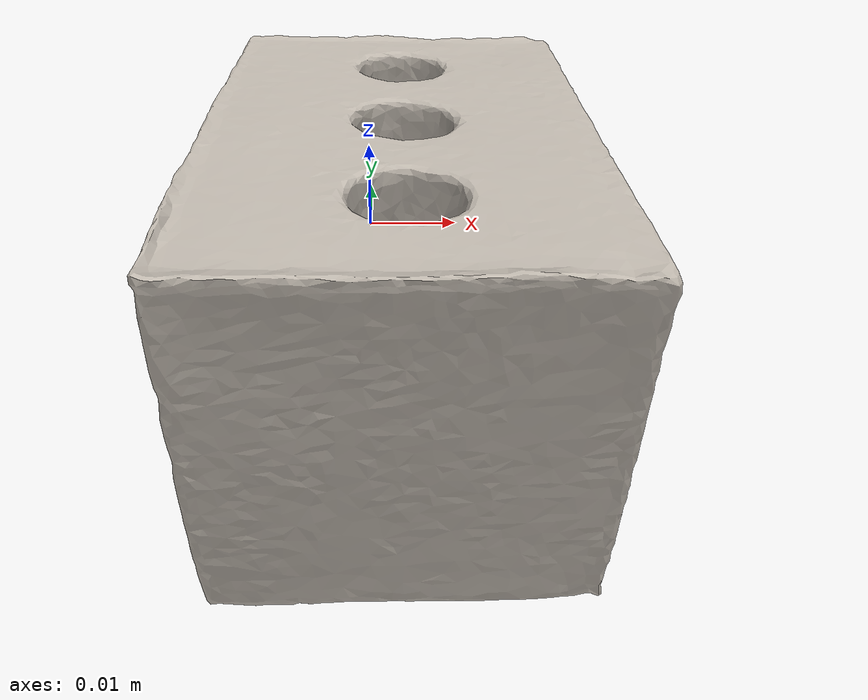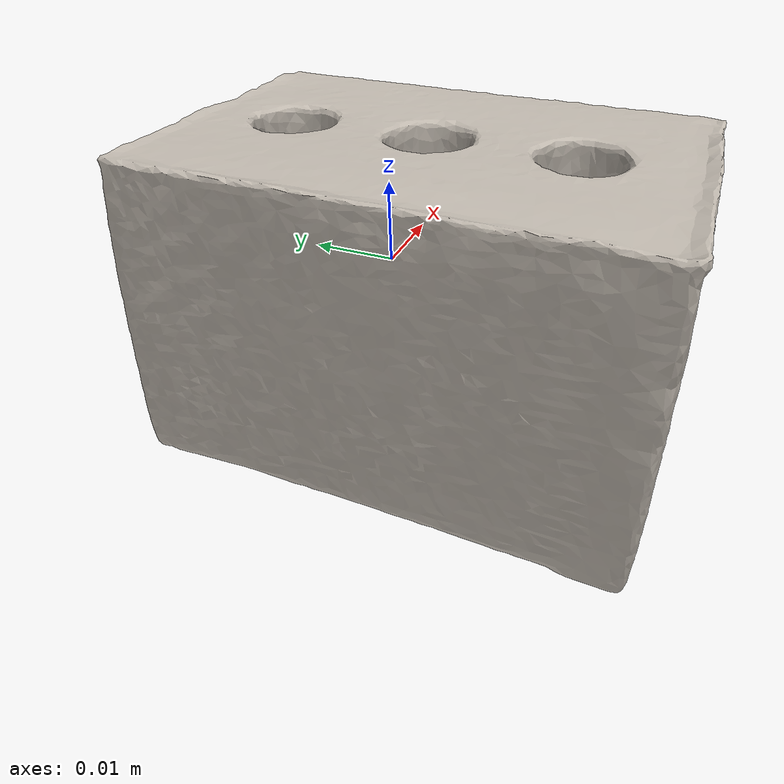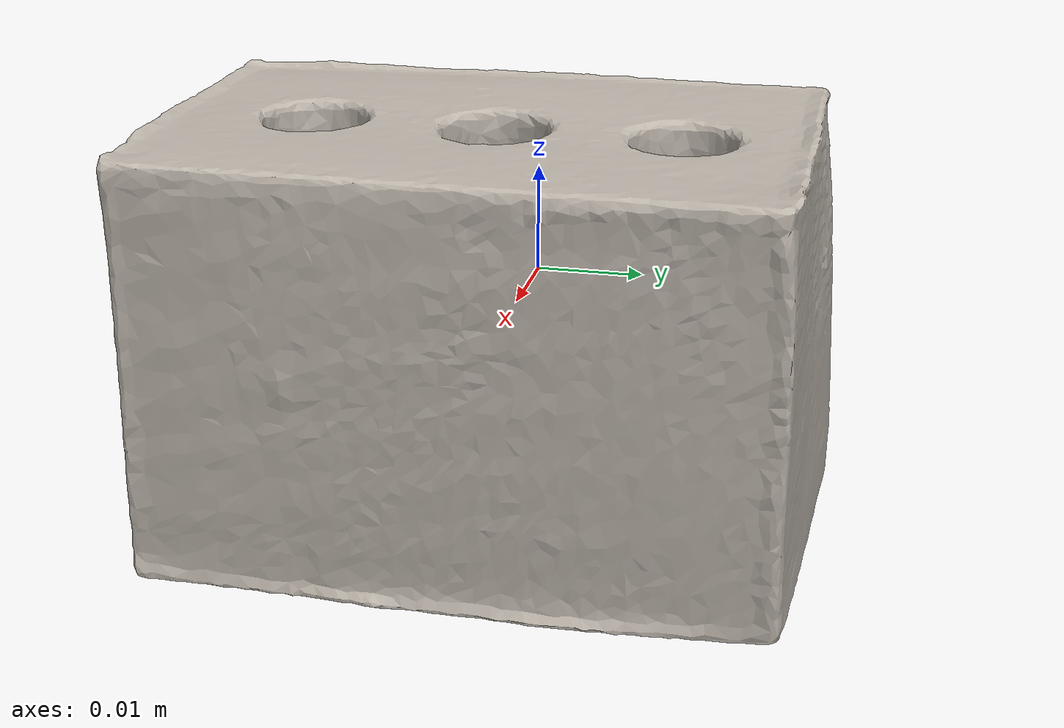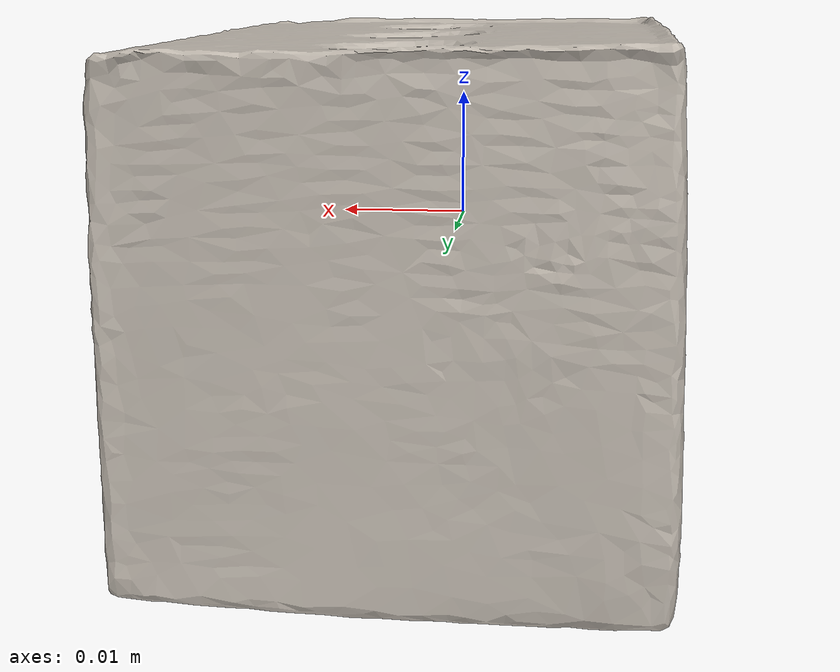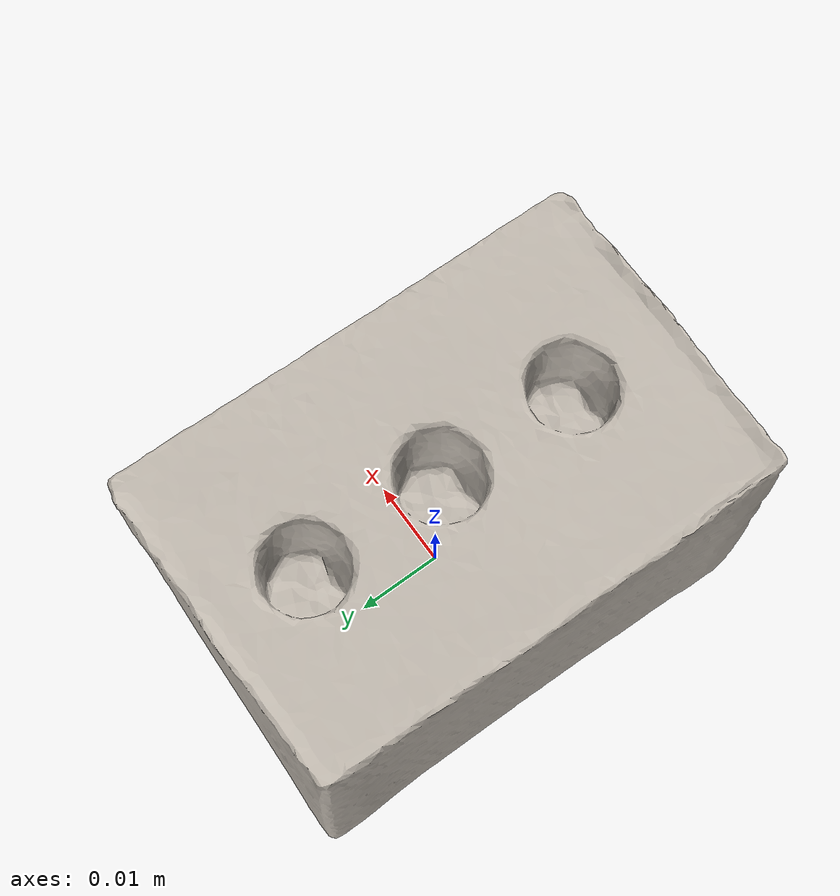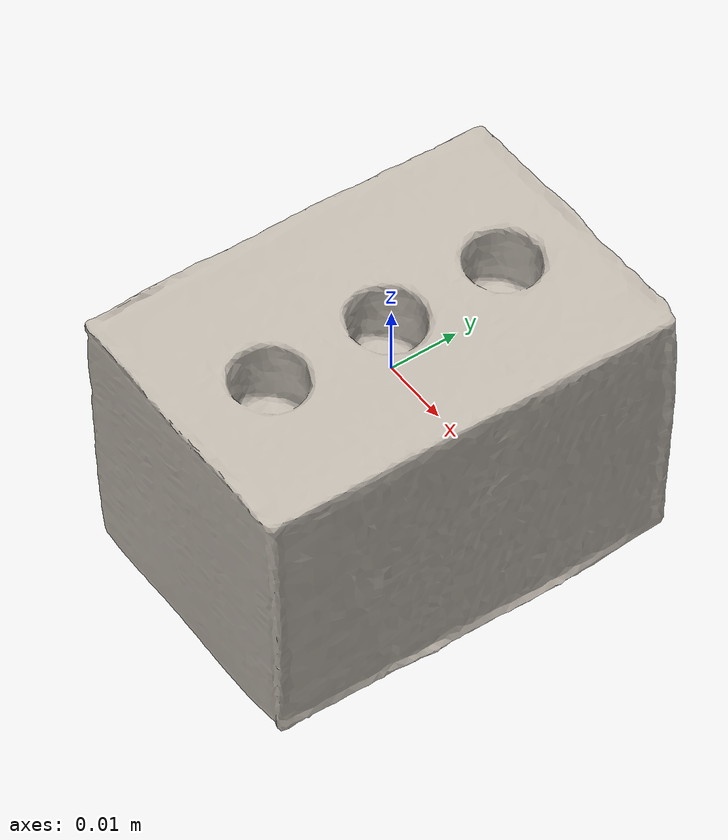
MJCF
<mujoco model="bread">
  <asset>
    <mesh file="nontextured.stl" name="obj_mesh" scale="0.8 0.8 0.8"/>
    <texture file="../../../../../textures/bread.png" type="2d" name="tex-bread" />
    <material name="bread" reflectance="0.7" texrepeat="15 15" texture="tex-bread" texuniform="true"/>
  </asset>
  <worldbody>
    <body>
      <body name="collision">
        <geom pos="0.018261 -0.0172 -0.025250500000000002" mesh="obj_mesh" type="mesh" solimp="0.998 0.998 0.001" solref="0.001 1" density="50" friction="0.95 0.3 0.1"  material="bread" group="1" condim="4"/>
      </body>
      <body name="visual">
        <geom pos="0.018261 -0.0172 -0.025250500000000002" mesh="obj_mesh" type="mesh" material="bread"  conaffinity="0" contype="0"  group="0" mass="0.0001"/>
        <geom pos="0.018261 -0.0172 -0.025250500000000002" mesh="obj_mesh" type="mesh" material="bread"  conaffinity="0" contype="0"  group="1" mass="0.0001"/>
      </body>
      <site rgba="0 0 0 0" size="0.005" pos="0 0 -0.0255965" name="bottom_site"/>
      <site rgba="0 0 0 0" size="0.005" pos="0 0 0.0255965" name="top_site"/>
      <site rgba="0 0 0 0" size="0.005" pos="0.026279999999999998 0.038937 0.0255965" name="horizontal_radius_site"/>
    </body>
  </worldbody>
</mujoco>
